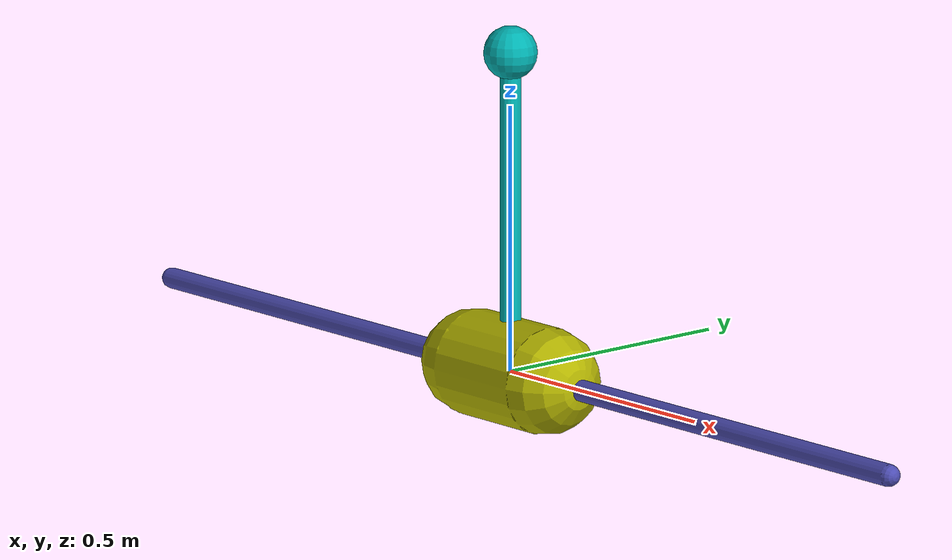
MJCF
<mujoco model="inverted pendulum">
	<compiler inertiafromgeom="true"/>
	<default>
		<joint armature="0" damping="0.0" limited="true"/>
		<geom contype="0" friction="0.0 0.0 0.0" rgba="0.7 0.7 0 1"/>
		<tendon/>
		<motor ctrlrange="-3 3"/>
	</default>
	<option gravity="0 0 -9.81" integrator="RK4" timestep="0.02"/>
	<size nstack="3000"/>
	<worldbody>
		<!--geom name="ground" type="plane" pos="0 0 0" /-->
		<geom name="rail" pos="0 0 0" quat="0.707 0 0.707 0" rgba="0.3 0.3 0.7 1" size="0.02 1" type="capsule"/>
		<body name="cart" pos="0 0 0">
			<joint axis="1 0 0" limited="true" name="slider" pos="0 0 0" range="-1 1" type="slide"/>
			<geom name="cart" pos="0 0 0" quat="0.707 0 0.707 0" size="0.1 0.1" density="100" type="capsule"/>
			<body name="pole" pos="0 0 0">
				<joint axis="0 1 0" name="hinge" pos="0 0 0" range="-90 90" type="hinge"/>
				<geom fromto="0 0 0 0.00 0 0.6" name="cpole" rgba="0 0.7 0.7 1" size="0.02 0.3" density="0" type="capsule"/>
                <body name="tip_mass" pos="0.00 0 0.6">
                    <geom name="mass" type="sphere" pos="0 0 0" size="0.05" rgba="0 0.7 0.7 1"/>
                </body>
			</body>
		</body>
	</worldbody>
	<actuator>
		<motor ctrllimited="true" ctrlrange="-3 3" gear="100" joint="slider" name="slide"/>
	</actuator>
</mujoco>
